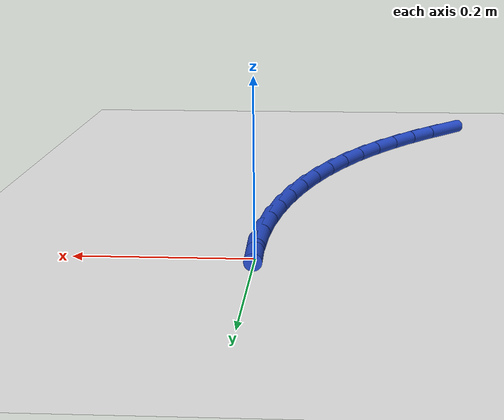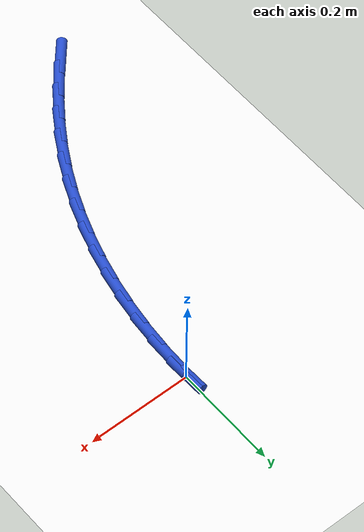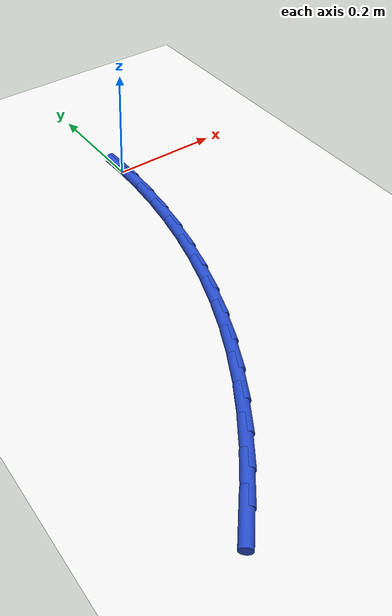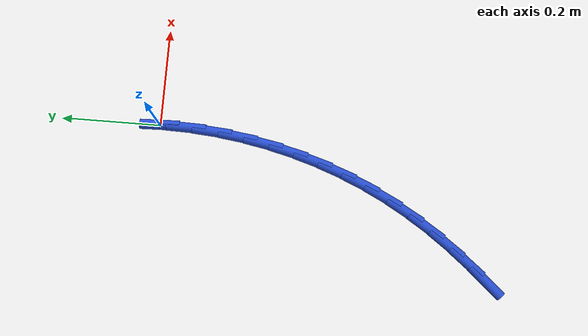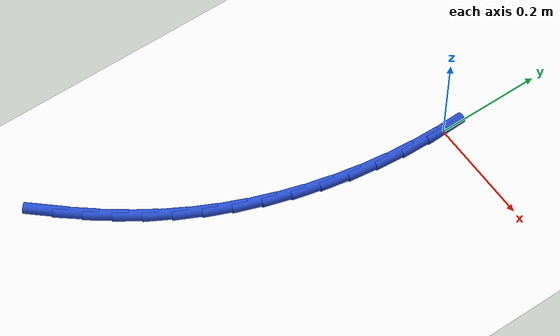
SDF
<sdf version="1.6">
 <world name="default">
  <model name="ground_plane">
   <static>1</static>
   <link name="link">
    <collision name="collision">
     <geometry><plane><normal>0 0 1</normal><size>100 100</size></plane></geometry>
     <surface><friction><ode><mu>100</mu><mu2>50</mu2></ode></friction></surface>
    </collision>
    <visual name="visual">
     <cast_shadows>0</cast_shadows>
     <geometry><plane><normal>0 0 1</normal><size>100 100</size></plane></geometry>
     <material>
      <script><uri>file://media/materials/scripts/gazebo.material</uri><name>Gazebo/WhiteGlow</name></script>
     </material>
    </visual>
   </link>
  </model>
  <model name="line">
   <link name="link_0">
    <pose>3.469446951953614e-18 -5.551115123125783e-17 0.01 0 1.57 -1.542239061790337</pose>
    <collision name="collision">
     <geometry><cylinder><radius>0.01</radius><length>0.08</length></cylinder></geometry>
    </collision>
    <visual name="visual">
     <material>
      <script><name>Gazebo/Blue</name><uri>file://media/materials/scripts/gazebo.material</uri></script>
     </material>
     <geometry><cylinder><radius>0.01</radius><length>0.08</length></cylinder></geometry>
    </visual>
   </link>
   <link name="link_116">
    <pose>-0.25872768549320063 -0.6621444324363511 0.01 0 1.57 0.847030025702949</pose>
    <collision name="collision">
     <geometry><cylinder><radius>0.01</radius><length>0.08</length></cylinder></geometry>
    </collision>
    <visual name="visual">
     <material>
      <script><name>Gazebo/Blue</name><uri>file://media/materials/scripts/gazebo.material</uri></script>
     </material>
     <geometry><cylinder><radius>0.01</radius><length>0.08</length></cylinder></geometry>
    </visual>
   </link>
   <link name="link_117">
    <pose>-0.22445661291076624 -0.6233654390415795 0.01 0 1.57 0.8925485456198544</pose>
    <collision name="collision">
     <geometry><cylinder><radius>0.01</radius><length>0.08</length></cylinder></geometry>
    </collision>
    <visual name="visual">
     <material>
      <script><name>Gazebo/Blue</name><uri>file://media/materials/scripts/gazebo.material</uri></script>
     </material>
     <geometry><cylinder><radius>0.01</radius><length>0.08</length></cylinder></geometry>
    </visual>
   </link>
   <link name="link_118">
    <pose>-0.19219356564611068 -0.5833252903960271 0.01 0 1.57 0.9424211265856323</pose>
    <collision name="collision">
     <geometry><cylinder><radius>0.01</radius><length>0.08</length></cylinder></geometry>
    </collision>
    <visual name="visual">
     <material>
      <script><name>Gazebo/Blue</name><uri>file://media/materials/scripts/gazebo.material</uri></script>
     </material>
     <geometry><cylinder><radius>0.01</radius><length>0.08</length></cylinder></geometry>
    </visual>
   </link>
   <link name="link_119">
    <pose>-0.16209074903701334 -0.5418972551109755 0.01 0 1.57 0.9964265330510949</pose>
    <collision name="collision">
     <geometry><cylinder><radius>0.01</radius><length>0.08</length></cylinder></geometry>
    </collision>
    <visual name="visual">
     <material>
      <script><name>Gazebo/Blue</name><uri>file://media/materials/scripts/gazebo.material</uri></script>
     </material>
     <geometry><cylinder><radius>0.01</radius><length>0.08</length></cylinder></geometry>
    </visual>
   </link>
   <link name="link_120">
    <pose>-0.13430036842125245 -0.49895460179770507 0.01 0 1.57 1.0541937669811359</pose>
    <collision name="collision">
     <geometry><cylinder><radius>0.01</radius><length>0.08</length></cylinder></geometry>
    </collision>
    <visual name="visual">
     <material>
      <script><name>Gazebo/Blue</name><uri>file://media/materials/scripts/gazebo.material</uri></script>
     </material>
     <geometry><cylinder><radius>0.01</radius><length>0.08</length></cylinder></geometry>
    </visual>
   </link>
   <link name="link_121">
    <pose>-0.10897436906124318 -0.45437123390254536 0.01 0 1.57 1.1137126161430548</pose>
    <collision name="collision">
     <geometry><cylinder><radius>0.01</radius><length>0.08</length></cylinder></geometry>
    </collision>
    <visual name="visual">
     <material>
      <script><name>Gazebo/Blue</name><uri>file://media/materials/scripts/gazebo.material</uri></script>
     </material>
     <geometry><cylinder><radius>0.01</radius><length>0.08</length></cylinder></geometry>
    </visual>
   </link>
   <link name="link_122">
    <pose>-0.08622545188598978 -0.40811684894473865 0.01 0 1.57 1.1717206185657982</pose>
    <collision name="collision">
     <geometry><cylinder><radius>0.01</radius><length>0.08</length></cylinder></geometry>
    </collision>
    <visual name="visual">
     <material>
      <script><name>Gazebo/Blue</name><uri>file://media/materials/scripts/gazebo.material</uri></script>
     </material>
     <geometry><cylinder><radius>0.01</radius><length>0.08</length></cylinder></geometry>
    </visual>
   </link>
   <link name="link_123">
    <pose>-0.06608551194703023 -0.3603583888211217 0.01 0 1.57 1.2280694258331664</pose>
    <collision name="collision">
     <geometry><cylinder><radius>0.01</radius><length>0.08</length></cylinder></geometry>
    </collision>
    <visual name="visual">
     <material>
      <script><name>Gazebo/Blue</name><uri>file://media/materials/scripts/gazebo.material</uri></script>
     </material>
     <geometry><cylinder><radius>0.01</radius><length>0.08</length></cylinder></geometry>
    </visual>
   </link>
   <link name="link_124">
    <pose>-0.0485764862087633 -0.3112871027779679 0.01 0 1.57 1.2830300058319077</pose>
    <collision name="collision">
     <geometry><cylinder><radius>0.01</radius><length>0.08</length></cylinder></geometry>
    </collision>
    <visual name="visual">
     <material>
      <script><name>Gazebo/Blue</name><uri>file://media/materials/scripts/gazebo.material</uri></script>
     </material>
     <geometry><cylinder><radius>0.01</radius><length>0.08</length></cylinder></geometry>
    </visual>
   </link>
   <link name="link_125">
    <pose>-0.033720311635586905 -0.26109424006154885 0.01 0 1.57 1.336882880934515</pose>
    <collision name="collision">
     <geometry><cylinder><radius>0.01</radius><length>0.08</length></cylinder></geometry>
    </collision>
    <visual name="visual">
     <material>
      <script><name>Gazebo/Blue</name><uri>file://media/materials/scripts/gazebo.material</uri></script>
     </material>
     <geometry><cylinder><radius>0.01</radius><length>0.08</length></cylinder></geometry>
    </visual>
   </link>
   <link name="link_126">
    <pose>-0.021538925191899084 -0.20997104991813606 0.01 0 1.57 1.3899135054557765</pose>
    <collision name="collision">
     <geometry><cylinder><radius>0.01</radius><length>0.08</length></cylinder></geometry>
    </collision>
    <visual name="visual">
     <material>
      <script><name>Gazebo/Blue</name><uri>file://media/materials/scripts/gazebo.material</uri></script>
     </material>
     <geometry><cylinder><radius>0.01</radius><length>0.08</length></cylinder></geometry>
    </visual>
   </link>
   <link name="link_127">
    <pose>-0.012054263842098387 -0.15810878159400293 0.01 0 1.57 1.4424091746194567</pose>
    <collision name="collision">
     <geometry><cylinder><radius>0.01</radius><length>0.08</length></cylinder></geometry>
    </collision>
    <visual name="visual">
     <material>
      <script><name>Gazebo/Blue</name><uri>file://media/materials/scripts/gazebo.material</uri></script>
     </material>
     <geometry><cylinder><radius>0.01</radius><length>0.08</length></cylinder></geometry>
    </visual>
   </link>
   <link name="link_128">
    <pose>-0.005288264550582841 -0.1056986843354212 0.01 0 1.57 1.494657012811291</pose>
    <collision name="collision">
     <geometry><cylinder><radius>0.01</radius><length>0.08</length></cylinder></geometry>
    </collision>
    <visual name="visual">
     <material>
      <script><name>Gazebo/Blue</name><uri>file://media/materials/scripts/gazebo.material</uri></script>
     </material>
     <geometry><cylinder><radius>0.01</radius><length>0.08</length></cylinder></geometry>
    </visual>
   </link>
   <link name="link_129">
    <pose>-0.0012628642817506374 -0.05293200738866278 0.01 0 1.57 1.5469426168769134</pose>
    <collision name="collision">
     <geometry><cylinder><radius>0.01</radius><length>0.08</length></cylinder></geometry>
    </collision>
    <visual name="visual">
     <material>
      <script><name>Gazebo/Blue</name><uri>file://media/materials/scripts/gazebo.material</uri></script>
     </material>
     <geometry><cylinder><radius>0.01</radius><length>0.08</length></cylinder></geometry>
    </visual>
   </link>
   <link name="link_130">
    <pose>1.734723475976807e-17 -1.3877787807814457e-17 0.01 0 1.57 -1.5420436940516997</pose>
    <collision name="collision">
     <geometry><cylinder><radius>0.01</radius><length>0.08</length></cylinder></geometry>
    </collision>
    <visual name="visual">
     <material>
      <script><name>Gazebo/Blue</name><uri>file://media/materials/scripts/gazebo.material</uri></script>
     </material>
     <geometry><cylinder><radius>0.01</radius><length>0.08</length></cylinder></geometry>
    </visual>
   </link>
  </model>
 </world>
</sdf>
